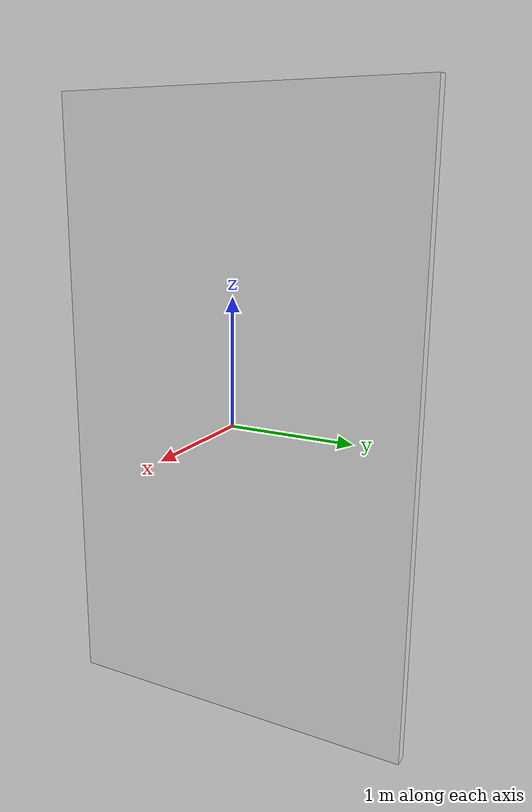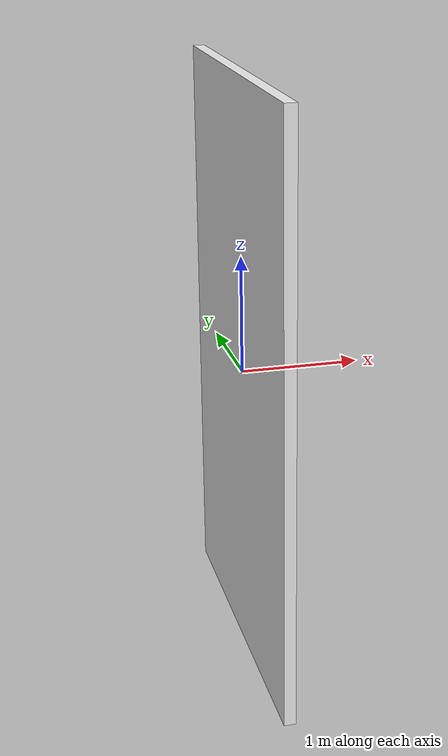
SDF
<?xml version="1.0" ?>
<sdf version='1.4'>
  <model name='vertical_surface'>
      <static>1</static>
      <pose frame=''>0 0 0 0 0 0</pose>
      <link name='vertical_surface_link'>
        <inertial>
          <mass>0.1</mass>
          <inertia>
            <ixx>8.41666666667e-05</ixx>
            <ixy>0</ixy>
            <ixz>0</ixz>
            <iyy>3.08333333333e-05</iyy>
            <iyz>0</iyz>
            <izz>0.000113333333333</izz>
          </inertia>
        </inertial>
        <collision name='vertical_surface_link_collision'>
          <geometry>
            <box>
              <size>0.1 2.0 2.0</size>
            </box>
          </geometry>
          <max_contacts>1000</max_contacts>
          <surface>
            <contact>
              <ode/>
            </contact>
            <bounce/>
            <friction>
              <torsional>
                <ode/>
              </torsional>
              <ode/>
            </friction>
          </surface>
        </collision>
        <visual name='vertical_surface_link_visual'>
          <geometry>
            <box>
              <size>0.1 3.0 5.0</size>
            </box>
          </geometry>
          <material>
            <script>
              <uri>file://media/materials/scripts/gazebo.material</uri>
              <name>Gazebo/White</name>
            </script>
          </material>
        </visual>
        <self_collide>0</self_collide>
        <kinematic>0</kinematic>
      </link>
    </model>
</sdf>
